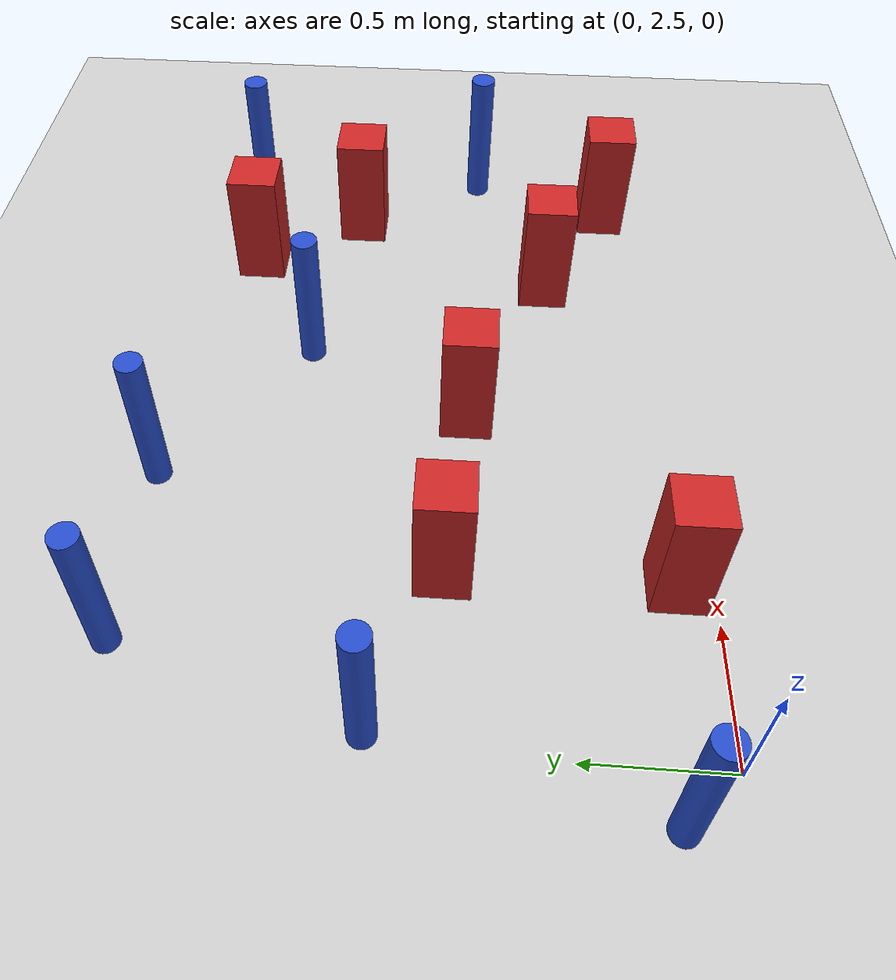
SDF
<sdf version="1.6">
 <world name="default">
  <model name="ground_plane">
   <static>1</static>
   <link name="link">
    <collision name="collision">
     <geometry><plane><normal>0 0 1</normal><size>100 100</size></plane></geometry>
     <surface><friction><ode><mu>100</mu><mu2>50</mu2></ode></friction></surface>
    </collision>
    <visual name="visual">
     <cast_shadows>0</cast_shadows>
     <geometry><plane><normal>0 0 1</normal><size>100 100</size></plane></geometry>
     <material>
      <ambient>1.0 1.0 1.0 1.0</ambient>
      <diffuse>0.8 0.8 0.8 1.0</diffuse>
      <specular>0.01 0.01 0.01 1.000000</specular>
     </material>
    </visual>
   </link>
  </model>
  <model name="square_post_obstacle0">
   <static>true</static>
   <pose>2.64326265349 2.7935497767 -6.11067671241e-07 -5.50515727128e-06 -8.79689657224e-07 2.37013304536e-05</pose>
   <link name="link">
    <pose>0 0 0.25 0 -0 0</pose>
    <inertial>
     <mass>100</mass>
     <inertia>
      <ixx>0.166667</ixx>
      <ixy>0</ixy>
      <ixz>0</ixz>
      <iyy>0.166667</iyy>
      <iyz>0</iyz>
      <izz>0.166667</izz>
     </inertia>
    </inertial>
    <collision name="collision"><geometry><box><size>.2 .2 .5</size></box></geometry></collision>
    <visual name="visual">
     <geometry><box><size>.2 .2 .5</size></box></geometry>
     <material>
      <script><name>Gazebo/Red</name><uri>file://media/materials/scripts/gazebo.material</uri></script>
     </material>
    </visual>
   </link>
  </model>
  <model name="pole_obstacle1">
   <static>true</static>
   <pose>1.67325718551 4.01669044763 -9.47619616065e-06 5.49618799737e-07 2.3631041406e-07 -1.55090534801e-07</pose>
   <link name="link">
    <pose>0 0 0.3 0 -0 0</pose>
    <inertial>
     <mass>1</mass>
     <inertia><ixx>0.145833</ixx><ixy>0</ixy><ixz>0</ixz><iyy>0.145833</iyy><iyz>0</iyz><izz>0.125</izz></inertia>
    </inertial>
    <collision name="collision">
     <geometry><cylinder><radius>0.05</radius><length>.6</length></cylinder></geometry>
    </collision>
    <visual name="visual">
     <geometry><cylinder><radius>0.05</radius><length>.6</length></cylinder></geometry>
     <material>
      <script><name>Gazebo/Blue</name><uri>file://media/materials/scripts/gazebo.material</uri></script>
     </material>
    </visual>
   </link>
  </model>
  <model name="square_post_obstacle19">
   <static>true</static>
   <pose>2.12141466955 3.06621668363 -6.11067671241e-07 -5.50515727128e-06 -8.79689657224e-07 2.37013304536e-05</pose>
   <link name="link">
    <pose>0 0 0.25 0 -0 0</pose>
    <inertial>
     <mass>100</mass>
     <inertia>
      <ixx>0.166667</ixx>
      <ixy>0</ixy>
      <ixz>0</ixz>
      <iyy>0.166667</iyy>
      <iyz>0</iyz>
      <izz>0.166667</izz>
     </inertia>
    </inertial>
    <collision name="collision"><geometry><box><size>.2 .2 .5</size></box></geometry></collision>
    <visual name="visual">
     <geometry><box><size>.2 .2 .5</size></box></geometry>
     <material>
      <script><name>Gazebo/Red</name><uri>file://media/materials/scripts/gazebo.material</uri></script>
     </material>
    </visual>
   </link>
  </model>
  <model name="pole_obstacle29">
   <static>true</static>
   <pose>0.0483259557495 3.65297619411 -9.4761961606e-06 5.49618799729e-07 2.36310413998e-07 -1.55090534825e-07</pose>
   <link name="link">
    <pose>0 0 0.3 0 -0 0</pose>
    <inertial>
     <mass>1</mass>
     <inertia><ixx>0.145833</ixx><ixy>0</ixy><ixz>0</ixz><iyy>0.145833</iyy><iyz>0</iyz><izz>0.125</izz></inertia>
    </inertial>
    <collision name="collision">
     <geometry><cylinder><radius>0.05</radius><length>.6</length></cylinder></geometry>
    </collision>
    <visual name="visual">
     <geometry><cylinder><radius>0.05</radius><length>.6</length></cylinder></geometry>
     <material>
      <script><name>Gazebo/Blue</name><uri>file://media/materials/scripts/gazebo.material</uri></script>
     </material>
    </visual>
   </link>
  </model>
  <model name="square_post_obstacle34">
   <static>true</static>
   <pose>0.638338198088 2.637271387 -6.11067671241e-07 -5.50515727128e-06 -8.79689657224e-07 2.37013304536e-05</pose>
   <link name="link">
    <pose>0 0 0.25 0 -0 0</pose>
    <inertial>
     <mass>100</mass>
     <inertia>
      <ixx>0.166667</ixx>
      <ixy>0</ixy>
      <ixz>0</ixz>
      <iyy>0.166667</iyy>
      <iyz>0</iyz>
      <izz>0.166667</izz>
     </inertia>
    </inertial>
    <collision name="collision"><geometry><box><size>.2 .2 .5</size></box></geometry></collision>
    <visual name="visual">
     <geometry><box><size>.2 .2 .5</size></box></geometry>
     <material>
      <script><name>Gazebo/Red</name><uri>file://media/materials/scripts/gazebo.material</uri></script>
     </material>
    </visual>
   </link>
  </model>
  <model name="square_post_obstacle38">
   <static>true</static>
   <pose>0.642048165023 3.43116105708 -6.11067671241e-07 -5.50515727128e-06 -8.79689657224e-07 2.37013304536e-05</pose>
   <link name="link">
    <pose>0 0 0.25 0 -0 0</pose>
    <inertial>
     <mass>100</mass>
     <inertia>
      <ixx>0.166667</ixx>
      <ixy>0</ixy>
      <ixz>0</ixz>
      <iyy>0.166667</iyy>
      <iyz>0</iyz>
      <izz>0.166667</izz>
     </inertia>
    </inertial>
    <collision name="collision"><geometry><box><size>.2 .2 .5</size></box></geometry></collision>
    <visual name="visual">
     <geometry><box><size>.2 .2 .5</size></box></geometry>
     <material>
      <script><name>Gazebo/Red</name><uri>file://media/materials/scripts/gazebo.material</uri></script>
     </material>
    </visual>
   </link>
  </model>
  <model name="pole_obstacle53">
   <static>true</static>
   <pose>-0.175183836312 2.69586648533 -9.47619616065e-06 5.49618799738e-07 2.36310414068e-07 -1.55090534794e-07</pose>
   <link name="link">
    <pose>0 0 0.3 0 -0 0</pose>
    <inertial>
     <mass>1</mass>
     <inertia><ixx>0.145833</ixx><ixy>0</ixy><ixz>0</ixz><iyy>0.145833</iyy><iyz>0</iyz><izz>0.125</izz></inertia>
    </inertial>
    <collision name="collision">
     <geometry><cylinder><radius>0.05</radius><length>.6</length></cylinder></geometry>
    </collision>
    <visual name="visual">
     <geometry><cylinder><radius>0.05</radius><length>.6</length></cylinder></geometry>
     <material>
      <script><name>Gazebo/Blue</name><uri>file://media/materials/scripts/gazebo.material</uri></script>
     </material>
    </visual>
   </link>
  </model>
  <model name="square_post_obstacle71">
   <static>true</static>
   <pose>2.23199578063 4.31087838793 -6.11067671241e-07 -5.50515727128e-06 -8.79689657224e-07 2.37013304536e-05</pose>
   <link name="link">
    <pose>0 0 0.25 0 -0 0</pose>
    <inertial>
     <mass>100</mass>
     <inertia>
      <ixx>0.166667</ixx>
      <ixy>0</ixy>
      <ixz>0</ixz>
      <iyy>0.166667</iyy>
      <iyz>0</iyz>
      <izz>0.166667</izz>
     </inertia>
    </inertial>
    <collision name="collision"><geometry><box><size>.2 .2 .5</size></box></geometry></collision>
    <visual name="visual">
     <geometry><box><size>.2 .2 .5</size></box></geometry>
     <material>
      <script><name>Gazebo/Red</name><uri>file://media/materials/scripts/gazebo.material</uri></script>
     </material>
    </visual>
   </link>
  </model>
  <model name="pole_obstacle73">
   <static>true</static>
   <pose>2.84754283846 3.36684391481 -9.47619616065e-06 5.49618799737e-07 2.36310414051e-07 -1.55090534807e-07</pose>
   <link name="link">
    <pose>0 0 0.3 0 -0 0</pose>
    <inertial>
     <mass>1</mass>
     <inertia><ixx>0.145833</ixx><ixy>0</ixy><ixz>0</ixz><iyy>0.145833</iyy><iyz>0</iyz><izz>0.125</izz></inertia>
    </inertial>
    <collision name="collision">
     <geometry><cylinder><radius>0.05</radius><length>.6</length></cylinder></geometry>
    </collision>
    <visual name="visual">
     <geometry><cylinder><radius>0.05</radius><length>.6</length></cylinder></geometry>
     <material>
      <script><name>Gazebo/Blue</name><uri>file://media/materials/scripts/gazebo.material</uri></script>
     </material>
    </visual>
   </link>
  </model>
  <model name="pole_obstacle75">
   <static>true</static>
   <pose>0.30811772106 4.52176608656 -9.47619616065e-06 5.49618799737e-07 2.36310414065e-07 -1.55090534796e-07</pose>
   <link name="link">
    <pose>0 0 0.3 0 -0 0</pose>
    <inertial>
     <mass>1</mass>
     <inertia><ixx>0.145833</ixx><ixy>0</ixy><ixz>0</ixz><iyy>0.145833</iyy><iyz>0</iyz><izz>0.125</izz></inertia>
    </inertial>
    <collision name="collision">
     <geometry><cylinder><radius>0.05</radius><length>.6</length></cylinder></geometry>
    </collision>
    <visual name="visual">
     <geometry><cylinder><radius>0.05</radius><length>.6</length></cylinder></geometry>
     <material>
      <script><name>Gazebo/Blue</name><uri>file://media/materials/scripts/gazebo.material</uri></script>
     </material>
    </visual>
   </link>
  </model>
  <model name="pole_obstacle141">
   <static>true</static>
   <pose>1.0019943978 4.51145477331 -9.47619616065e-06 5.49618799737e-07 2.36310414059e-07 -1.550905348e-07</pose>
   <link name="link">
    <pose>0 0 0.3 0 -0 0</pose>
    <inertial>
     <mass>1</mass>
     <inertia><ixx>0.145833</ixx><ixy>0</ixy><ixz>0</ixz><iyy>0.145833</iyy><iyz>0</iyz><izz>0.125</izz></inertia>
    </inertial>
    <collision name="collision">
     <geometry><cylinder><radius>0.05</radius><length>.6</length></cylinder></geometry>
    </collision>
    <visual name="visual">
     <geometry><cylinder><radius>0.05</radius><length>.6</length></cylinder></geometry>
     <material>
      <script><name>Gazebo/Blue</name><uri>file://media/materials/scripts/gazebo.material</uri></script>
     </material>
    </visual>
   </link>
  </model>
  <model name="square_post_obstacle143">
   <static>true</static>
   <pose>1.35471833447 3.37376423899 -6.11067671241e-07 -5.50515727128e-06 -8.79689657224e-07 2.37013304536e-05</pose>
   <link name="link">
    <pose>0 0 0.25 0 -0 0</pose>
    <inertial>
     <mass>100</mass>
     <inertia>
      <ixx>0.166667</ixx>
      <ixy>0</ixy>
      <ixz>0</ixz>
      <iyy>0.166667</iyy>
      <iyz>0</iyz>
      <izz>0.166667</izz>
     </inertia>
    </inertial>
    <collision name="collision"><geometry><box><size>.2 .2 .5</size></box></geometry></collision>
    <visual name="visual">
     <geometry><box><size>.2 .2 .5</size></box></geometry>
     <material>
      <script><name>Gazebo/Red</name><uri>file://media/materials/scripts/gazebo.material</uri></script>
     </material>
    </visual>
   </link>
  </model>
  <model name="pole_obstacle177">
   <static>true</static>
   <pose>2.75902976267 4.38501361247 -9.47619616065e-06 5.49618799738e-07 2.3631041406e-07 -1.55090534801e-07</pose>
   <link name="link">
    <pose>0 0 0.3 0 -0 0</pose>
    <inertial>
     <mass>1</mass>
     <inertia><ixx>0.145833</ixx><ixy>0</ixy><ixz>0</ixz><iyy>0.145833</iyy><iyz>0</iyz><izz>0.125</izz></inertia>
    </inertial>
    <collision name="collision">
     <geometry><cylinder><radius>0.05</radius><length>.6</length></cylinder></geometry>
    </collision>
    <visual name="visual">
     <geometry><cylinder><radius>0.05</radius><length>.6</length></cylinder></geometry>
     <material>
      <script><name>Gazebo/Blue</name><uri>file://media/materials/scripts/gazebo.material</uri></script>
     </material>
    </visual>
   </link>
  </model>
  <model name="square_post_obstacle223">
   <static>true</static>
   <pose>2.51582436188 3.88459619668 -6.11067671241e-07 -5.50515727128e-06 -8.79689657224e-07 2.37013304536e-05</pose>
   <link name="link">
    <pose>0 0 0.25 0 -0 0</pose>
    <inertial>
     <mass>100</mass>
     <inertia>
      <ixx>0.166667</ixx>
      <ixy>0</ixy>
      <ixz>0</ixz>
      <iyy>0.166667</iyy>
      <iyz>0</iyz>
      <izz>0.166667</izz>
     </inertia>
    </inertial>
    <collision name="collision"><geometry><box><size>.2 .2 .5</size></box></geometry></collision>
    <visual name="visual">
     <geometry><box><size>.2 .2 .5</size></box></geometry>
     <material>
      <script><name>Gazebo/Red</name><uri>file://media/materials/scripts/gazebo.material</uri></script>
     </material>
    </visual>
   </link>
  </model>
 </world>
</sdf>
